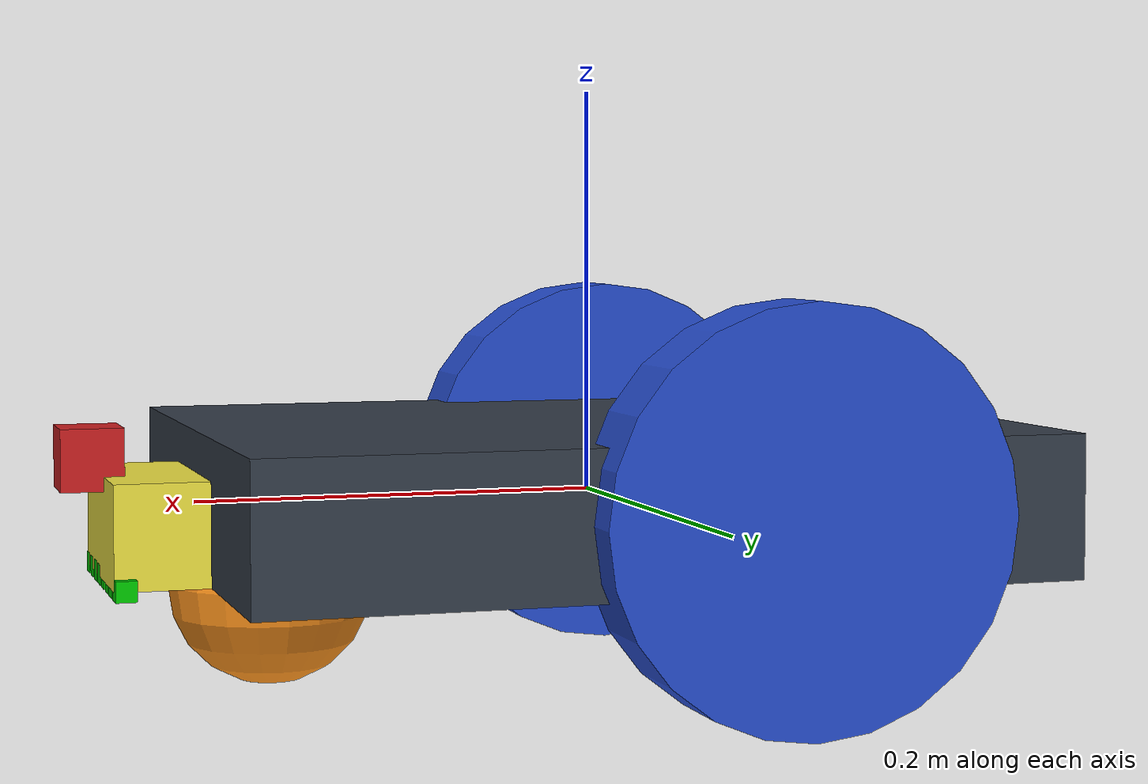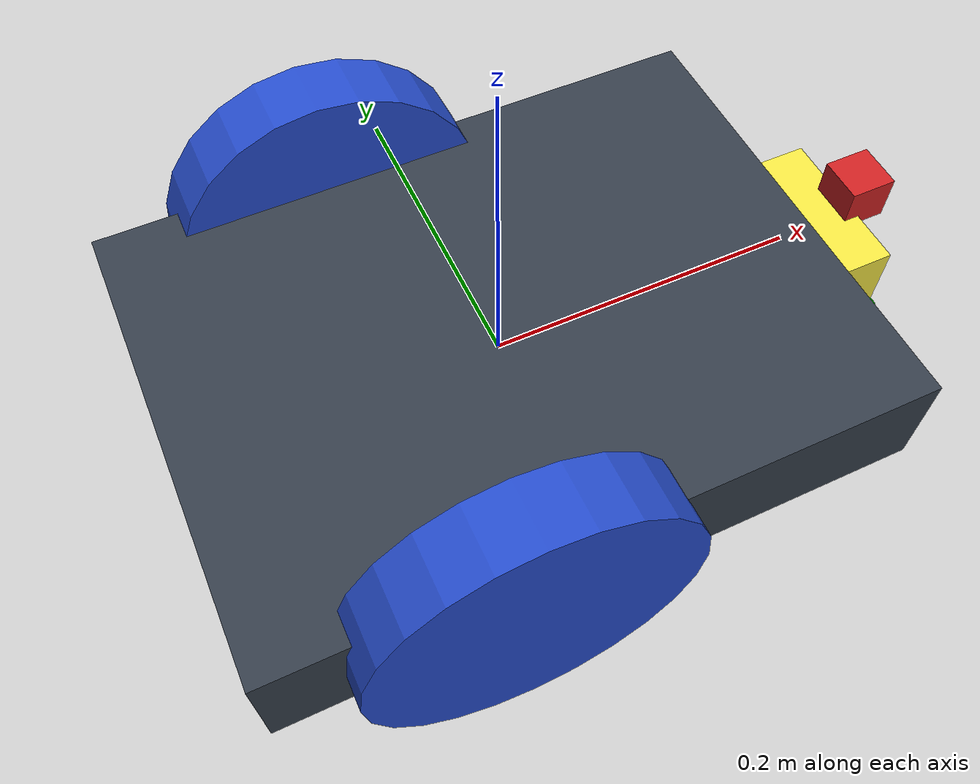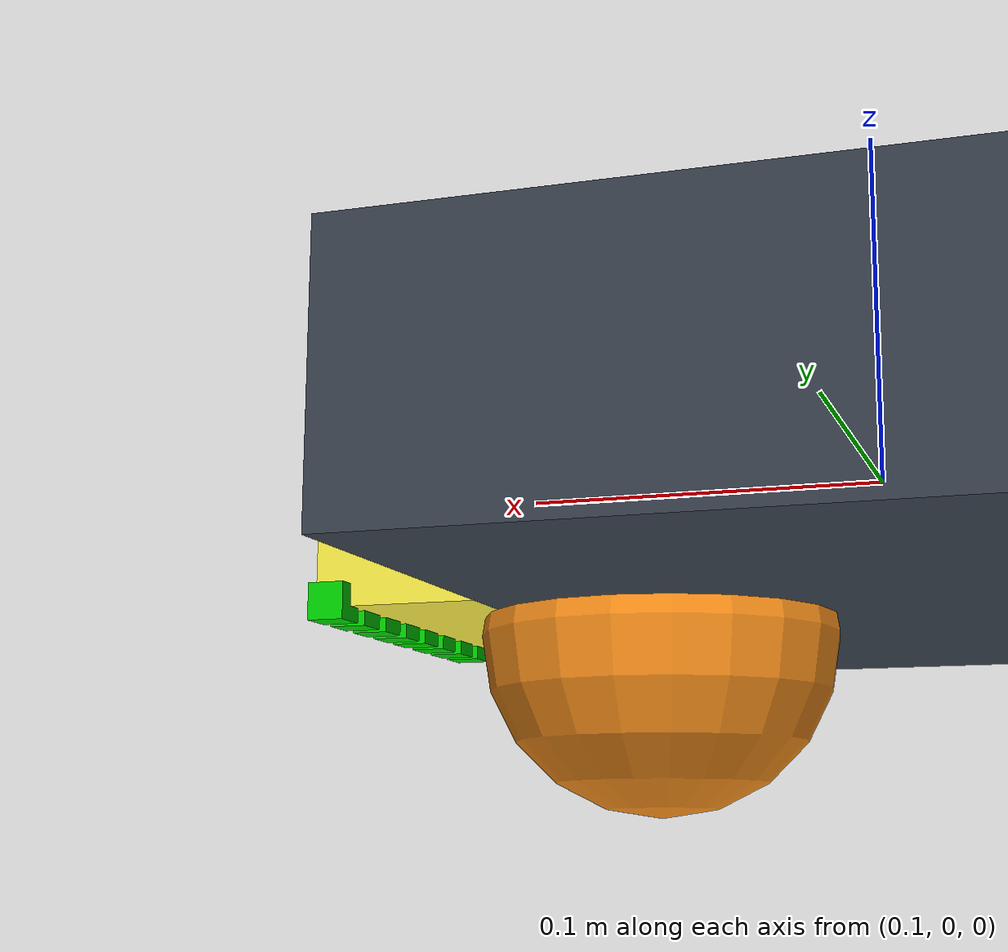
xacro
<?xml version="1.0" ?>
<robot name="robo" xmlns:xacro="https://www.ros.org/wiki/xacro" >

  <material name="black">
    <color rgba="0.0 0.0 0.0 1.0"/>
  </material>
  <material name="blue">
    <color rgba="0.203125 0.23828125 0.28515625 1.0"/>
  </material>
  <material name="green">
    <color rgba="0.0 0.8 0.0 1.0"/>
  </material>
  <material name="grey">
    <color rgba="0.2 0.2 0.2 1.0"/>
  </material>
  <material name="orange">
    <color rgba="1.0 0.423529411765 0.0392156862745 1.0"/>
  </material>
  <material name="brown">
    <color rgba="0.870588235294 0.811764705882 0.764705882353 1.0"/>
  </material>
  <material name="red">
    <color rgba="0.80078125 0.12890625 0.1328125 1.0"/>
  </material>
  <material name="white">
    <color rgba="1.0 1.0 1.0 1.0"/>
  </material>

  <gazebo reference="link_chassis">
    <material>Gazebo/Orange</material>
  </gazebo>
  <gazebo reference="link_left_wheel">
    <material>Gazebo/Blue</material>
  </gazebo>
  <gazebo reference="link_right_wheel">
    <material>Gazebo/Blue</material>
  </gazebo>

  <link name="link_chassis">
    <!-- pose and inertial -->
    <pose>0 0 0.1 0 0 0</pose>

    <inertial>
      <mass value="5"/>
      <origin rpy="0 0 0" xyz="0 0 0.1"/>
      <inertia ixx="0.0395416666667" ixy="0" ixz="0" iyy="0.106208333333" iyz="0" izz="0.106208333333"/>
    </inertial>

    <collision name="collision_chassis">
      <geometry>
        <box size="0.4 0.3 0.06"/>
      </geometry>
    </collision>

    <visual>
      <origin rpy="0 0 0" xyz="0 0 0"/>
      <geometry>
        <box size="0.4 0.3 0.07"/>
      </geometry>
      <material name="blue"/>
    </visual>

    <!-- caster front -->
    <collision name="caster_front_collision">
      <origin rpy=" 0 0 0" xyz="0.31 0 -0.05"/>
      <geometry>
        <sphere radius="0.05"/>
      </geometry>
      <surface>
        <friction>
          <ode>
            <mu>0</mu>
            <mu2>0</mu2>
            <slip1>1.0</slip1>
            <slip2>1.0</slip2>
          </ode>
        </friction>
      </surface>
    </collision>
    <visual name="caster_front_visual">
      <origin rpy=" 0 0 0" xyz="0.163 0 -0.04"/>
      <geometry>
        <sphere radius="0.05"/>
      </geometry>
    </visual>
    </link>

  <!-- Create wheel right -->

  <link name="link_right_wheel">
    <inertial>
      <mass value="0.2"/>
      <origin rpy="0 1.5707 1.5707" xyz="0 0 0"/>
      <inertia ixx="0.00052666666" ixy="0" ixz="0" iyy="0.00052666666" iyz="0" izz="0.001"/>
    </inertial>

    <collision name="link_right_wheel_collision">
      <origin rpy="0 1.5707 1.5707" xyz="0 0 0" />
      <geometry>
        <cylinder length="0.04" radius="0.1"/>
      </geometry>
    </collision>

    <visual name="link_right_wheel_visual">
      <origin rpy="0 1.5707 1.5707" xyz="0 0 0"/>
      <geometry>
        <cylinder length="0.04" radius="0.1"/>
      </geometry>
    </visual>

  </link>

  <!--   Joint for right wheel  -->
  <joint name="joint_right_wheel" type="continuous">
    <origin rpy="0 0 0" xyz="-0.054 0.15 0"/>
    <child link="link_right_wheel" />
    <parent link="link_chassis"/>
    <axis rpy="0 0 0" xyz="0 1 0"/>
    <limit effort="10000" velocity="1000"/>
    <joint_properties damping="1.0" friction="1.0" />
  </joint>

  <!-- Left Wheel link -->

  <link name="link_left_wheel">
    <inertial>
      <mass value="0.2"/>
      <origin rpy="0 1.5707 1.5707" xyz="0 0 0"/>
      <inertia ixx="0.00052666666" ixy="0" ixz="0" iyy="0.00052666666" iyz="0" izz="0.001"/>
    </inertial>

    <collision name="link_left_wheel_collision">
      <origin rpy="0 1.5707 1.5707" xyz="0 0 0" />
      <geometry>
        <cylinder length="0.04" radius="0.1"/>
      </geometry>
    </collision>

    <visual name="link_left_wheel_visual">
      <origin rpy="0 1.5707 1.5707" xyz="0 0 0"/>
      <geometry>
        <cylinder length="0.04" radius="0.1"/>
      </geometry>
    </visual>
  </link>

  <!--   Joint for left wheel  -->
  <joint name="joint_left_wheel" type="continuous">
    <origin rpy="0 0 0" xyz="-0.054 -0.15 0"/>
    <child link="link_left_wheel" />
    <parent link="link_chassis"/>
    <axis rpy="0 0 0" xyz="0 1 0"/>
    <limit effort="10000" velocity="1000"/>
    <joint_properties damping="1.0" friction="1.0" />
  </joint>

  <!-- Front sensor mount -->
  <link name="base_protrusion">
  <inertial>
      <mass value="0.2"/>
      <origin rpy="0 1.5707 1.5707" xyz="0 0 0"/>
      <inertia ixx="0.00052666666" ixy="0" ixz="0" iyy="0.00052666666" iyz="0" izz="0.001"/>
    </inertial>
  <visual>
    <geometry>
      <box size="0.1 0.05 0.05"/>
    </geometry>
  </visual>
  <collision>
    <geometry>
      <box size="0.1 0.05 0.05"/>
    </geometry>
  </collision>
</link>

<joint name="base_protrusion_joint" type="fixed">
  <axis xyz="0 0 0" />
    <origin rpy="0 0 1.5707" xyz="0.22 0 -0.01"/>
    <parent link="link_chassis"/>
    <child link="base_protrusion"/>
</joint>

  <!-- Camera -->
  <link name="camera_link">
    <inertial>
      <origin xyz="0 0 0" rpy="0 0 0"/>
      <mass value="0.5" />
      <!-- RANDOM INERTIA BELOW -->
      <inertia ixx="1e-6" ixy="0" ixz="0" iyy="1e-6" iyz="0" izz="1e-6" />
    </inertial>
    <visual>
      <origin xyz="0 0 0" rpy="0 0 0"/>
      <geometry>
          <box size="0.03 0.03 0.03"/>
      </geometry>
      <material name="red"/>
    </visual>
    <collision>
      <origin xyz="0 0 0" rpy="0 0 0"/>
      <geometry>
          <box size="0.1 0.1 0.1"/>
      </geometry>
    </collision>
  </link>

  <joint name="camera_joint" type="fixed">
    <axis xyz="0 0 0" />
    <origin xyz="0.25 0 0.023"/>
    <parent link="link_chassis"/>
    <child link="camera_link"/>
  </joint>

  <gazebo reference="camera_link">
    <sensor type="camera" name="camera1">
      <update_rate>30.0</update_rate>
      <camera name="head">
        <horizontal_fov>1.3962634</horizontal_fov>
        <image>
          <width>800</width>
          <height>800</height>
          <format>R8G8B8</format>
        </image>
        <clip>
          <near>0.02</near>
          <far>300</far>
        </clip>
        <noise>
          <type>gaussian</type>
          <!-- Noise is sampled independently per pixel on each frame.
               That pixel's noise value is added to each of its color
               channels, which at that point lie in the range [0,1]. -->
          <mean>0.0</mean>
          <stddev>0.007</stddev>
        </noise>
      </camera>
      <plugin name="camera_controller" filename="libgazebo_ros_camera.so">
        <alwaysOn>true</alwaysOn>
        <updateRate>0.0</updateRate>
        <cameraName>rrbot/camera1</cameraName>
        <imageTopicName>image_raw</imageTopicName>
        <cameraInfoTopicName>camera_info</cameraInfoTopicName>
        <frameName>camera_link</frameName>
        <hackBaseline>0.07</hackBaseline>
        <distortionK1>0.0</distortionK1>
        <distortionK2>0.0</distortionK2>
        <distortionK3>0.0</distortionK3>
        <distortionT1>0.0</distortionT1>
        <distortionT2>0.0</distortionT2>
      </plugin>
    </sensor>
  </gazebo>

  <gazebo>
    <plugin filename="libgazebo_ros_diff_drive.so" name="differential_drive_controller">
      <alwaysOn>true</alwaysOn>
      <updateRate>20</updateRate>
      <leftJoint>joint_right_wheel</leftJoint>
      <rightJoint>joint_left_wheel</rightJoint>
      <wheelSeparation>0.4</wheelSeparation>
      <wheelDiameter>0.1</wheelDiameter>
      <torque>0.1</torque>
      <commandTopic>cmd_vel</commandTopic>
      <odometryTopic>odom</odometryTopic>
      <odometryFrame>odom</odometryFrame>
      <robotBaseFrame>link_chassis</robotBaseFrame>
    </plugin>
  </gazebo>

  <joint name="ir_front_joint0" type="fixed">
    <axis xyz="0 1 0" />
    <origin rpy="0 1.5707 0" xyz="0.24 0.05 -0.034" />
    <parent link="link_chassis"/>
    <child link="base_ir_front0"/>
  </joint>
  <link name="base_ir_front0">
    <collision>
      <origin xyz="0 0 0" rpy="0 0 0"/>
      <geometry>
        <box size="0.01 0.01 0.01"/>
      </geometry>
    </collision>
       <visual>
      <origin xyz="0 0 0" rpy="0 0 0"/>
      <geometry>
        <box size="0.01 0.01 0.01"/>
      </geometry>
      <material name="green"/>
    </visual>
    <inertial>
      <mass value="1e-5" />
      <origin xyz="0 0 0" rpy="0 0 0"/>
      <inertia ixx="1e-6" ixy="0" ixz="0" iyy="1e-6" iyz="0"      izz="1e-6" />
    </inertial>
  </link>
  <gazebo reference="base_ir_front0">
   <sensor type="ray" name="TeraRanger">
      <pose>0 0 0 0 0 0</pose>
      <visualize>true</visualize>
      <update_rate>50</update_rate>
      <ray>
         <scan>
            <horizontal>
               <samples>10</samples>
               <resolution>1</resolution>
               <min_angle>-0.05</min_angle>
               <max_angle>0.05</max_angle>
            </horizontal>
            <vertical>
               <samples>10</samples>
               <resolution>1</resolution>
               <min_angle>-0.05</min_angle>
               <max_angle>0.05</max_angle>
            </vertical>
         </scan>
         <range>
            <min>0.01</min>
            <max>2</max>
            <resolution>0.02</resolution>
         </range>
      </ray>
      <plugin filename="libgazebo_ros_range.so" name="gazebo_ros_range">
         <gaussianNoise>0.005</gaussianNoise>
         <alwaysOn>true</alwaysOn>
         <updateRate>50</updateRate>
         <topicName>ir_sensor_0</topicName>
         <frameName>base_ir_front0</frameName>
         <radiation>INFRARED</radiation>
         <fov>0.2</fov>
      </plugin>
   </sensor>

   </gazebo>
     <joint name="ir_front_joint1" type="fixed">
    <axis xyz="0 1 0" />
    <origin rpy="0 1.5707 0" xyz="0.24 0.0357 -0.034" />
    <parent link="link_chassis"/>
    <child link="base_ir_front1"/>
  </joint>
  <link name="base_ir_front1">
    <collision>
      <origin xyz="0 0 0" rpy="0 0 0"/>
      <geometry>
        <box size="0.01 0.01 0.01"/>
      </geometry>
    </collision>
       <visual>
      <origin xyz="0 0 0" rpy="0 0 0"/>
      <geometry>
        <box size="0.01 0.01 0.01"/>
      </geometry>
      <material name="green"/>
    </visual>
    <inertial>
      <mass value="1e-5" />
      <origin xyz="0 0 0" rpy="0 0 0"/>
      <inertia ixx="1e-6" ixy="0" ixz="0" iyy="1e-6" iyz="0"      izz="1e-6" />
    </inertial>
  </link>
  <gazebo reference="base_ir_front1">
   <sensor type="ray" name="TeraRanger">
      <pose>0 0 0 0 0 0</pose>
      <visualize>true</visualize>
      <update_rate>50</update_rate>
      <ray>
         <scan>
            <horizontal>
               <samples>10</samples>
               <resolution>1</resolution>
               <min_angle>-0.05</min_angle>
               <max_angle>0.05</max_angle>
            </horizontal>
            <vertical>
               <samples>10</samples>
               <resolution>1</resolution>
               <min_angle>-0.05</min_angle>
               <max_angle>0.05</max_angle>
            </vertical>
         </scan>
         <range>
            <min>0.01</min>
            <max>2</max>
            <resolution>0.02</resolution>
         </range>
      </ray>
      <plugin filename="libgazebo_ros_range.so" name="gazebo_ros_range">
         <gaussianNoise>0.005</gaussianNoise>
         <alwaysOn>true</alwaysOn>
         <updateRate>50</updateRate>
         <topicName>ir_sensor_1</topicName>
         <frameName>base_ir_front1</frameName>
         <radiation>INFRARED</radiation>
         <fov>0.2</fov>
      </plugin>
   </sensor>
   </gazebo>

     <joint name="ir_front_joint2" type="fixed">
    <axis xyz="0 1 0" />
    <origin rpy="0 1.5707 0" xyz="0.24 0.0214 -0.034" />
    <parent link="link_chassis"/>
    <child link="base_ir_front2"/>
  </joint>
  <link name="base_ir_front2">
    <collision>
      <origin xyz="0 0 0" rpy="0 0 0"/>
      <geometry>
        <box size="0.01 0.01 0.01"/>
      </geometry>
    </collision>
       <visual>
      <origin xyz="0 0 0" rpy="0 0 0"/>
      <geometry>
        <box size="0.01 0.01 0.01"/>
      </geometry>
      <material name="green"/>
    </visual>
    <inertial>
      <mass value="1e-5" />
      <origin xyz="0 0 0" rpy="0 0 0"/>
      <inertia ixx="1e-6" ixy="0" ixz="0" iyy="1e-6" iyz="0"      izz="1e-6" />
    </inertial>
  </link>
  <gazebo reference="base_ir_front2">
   <sensor type="ray" name="TeraRanger">
      <pose>0 0 0 0 0 0</pose>
      <visualize>true</visualize>
      <update_rate>50</update_rate>
      <ray>
         <scan>
            <horizontal>
               <samples>10</samples>
               <resolution>1</resolution>
               <min_angle>-0.05</min_angle>
               <max_angle>0.05</max_angle>
            </horizontal>
            <vertical>
               <samples>10</samples>
               <resolution>1</resolution>
               <min_angle>-0.05</min_angle>
               <max_angle>0.05</max_angle>
            </vertical>
         </scan>
         <range>
            <min>0.01</min>
            <max>2</max>
            <resolution>0.02</resolution>
         </range>
      </ray>
      <plugin filename="libgazebo_ros_range.so" name="gazebo_ros_range">
         <gaussianNoise>0.005</gaussianNoise>
         <alwaysOn>true</alwaysOn>
         <updateRate>50</updateRate>
         <topicName>ir_sensor_2</topicName>
         <frameName>base_ir_front2</frameName>
         <radiation>INFRARED</radiation>
         <fov>0.2</fov>
      </plugin>
   </sensor>
   </gazebo>

  <joint name="ir_front_joint3" type="fixed">
    <axis xyz="0 1 0" />
    <origin rpy="0 1.5707 0" xyz="0.24 0.0071 -0.034" />
    <parent link="link_chassis"/>
    <child link="base_ir_front3"/>
  </joint>
  <link name="base_ir_front3">
    <collision>
      <origin xyz="0 0 0" rpy="0 0 0"/>
      <geometry>
        <box size="0.01 0.01 0.01"/>
      </geometry>
    </collision>
       <visual>
      <origin xyz="0 0 0" rpy="0 0 0"/>
      <geometry>
        <box size="0.01 0.01 0.01"/>
      </geometry>
      <material name="green"/>
    </visual>
    <inertial>
      <mass value="1e-5" />
      <origin xyz="0 0 0" rpy="0 0 0"/>
      <inertia ixx="1e-6" ixy="0" ixz="0" iyy="1e-6" iyz="0"      izz="1e-6" />
    </inertial>
  </link>
  <gazebo reference="base_ir_front3">
   <sensor type="ray" name="TeraRanger">
      <pose>0 0 0 0 0 0</pose>
      <visualize>true</visualize>
      <update_rate>50</update_rate>
      <ray>
         <scan>
            <horizontal>
               <samples>10</samples>
               <resolution>1</resolution>
               <min_angle>-0.05</min_angle>
               <max_angle>0.05</max_angle>
            </horizontal>
            <vertical>
               <samples>10</samples>
               <resolution>1</resolution>
               <min_angle>-0.05</min_angle>
               <max_angle>0.05</max_angle>
            </vertical>
         </scan>
         <range>
            <min>0.01</min>
            <max>2</max>
            <resolution>0.02</resolution>
         </range>
      </ray>
      <plugin filename="libgazebo_ros_range.so" name="gazebo_ros_range">
         <gaussianNoise>0.005</gaussianNoise>
         <alwaysOn>true</alwaysOn>
         <updateRate>50</updateRate>
         <topicName>ir_sensor_3</topicName>
         <frameName>base_ir_front3</frameName>
         <radiation>INFRARED</radiation>
         <fov>0.2</fov>
      </plugin>
   </sensor>
   </gazebo>

  <joint name="ir_front_joint4" type="fixed">
    <axis xyz="0 1 0" />
    <origin rpy="0 1.5707 0" xyz="0.24 -0.0071 -0.034" />
    <parent link="link_chassis"/>
    <child link="base_ir_front4"/>
  </joint>
  <link name="base_ir_front4">
    <collision>
      <origin xyz="0 0 0" rpy="0 0 0"/>
      <geometry>
        <box size="0.01 0.01 0.01"/>
      </geometry>
    </collision>
       <visual>
      <origin xyz="0 0 0" rpy="0 0 0"/>
      <geometry>
        <box size="0.01 0.01 0.01"/>
      </geometry>
      <material name="green"/>
    </visual>
    <inertial>
      <mass value="1e-5" />
      <origin xyz="0 0 0" rpy="0 0 0"/>
      <inertia ixx="1e-6" ixy="0" ixz="0" iyy="1e-6" iyz="0"      izz="1e-6" />
    </inertial>
  </link>
  <gazebo reference="base_ir_front4">
   <sensor type="ray" name="TeraRanger">
      <pose>0 0 0 0 0 0</pose>
      <visualize>true</visualize>
      <update_rate>50</update_rate>
      <ray>
         <scan>
            <horizontal>
               <samples>10</samples>
               <resolution>1</resolution>
               <min_angle>-0.05</min_angle>
               <max_angle>0.05</max_angle>
            </horizontal>
            <vertical>
               <samples>10</samples>
               <resolution>1</resolution>
               <min_angle>-0.05</min_angle>
               <max_angle>0.05</max_angle>
            </vertical>
         </scan>
         <range>
            <min>0.01</min>
            <max>2</max>
            <resolution>0.02</resolution>
         </range>
      </ray>
      <plugin filename="libgazebo_ros_range.so" name="gazebo_ros_range">
         <gaussianNoise>0.005</gaussianNoise>
         <alwaysOn>true</alwaysOn>
         <updateRate>50</updateRate>
         <topicName>ir_sensor_4</topicName>
         <frameName>base_ir_front4</frameName>
         <radiation>INFRARED</radiation>
         <fov>0.2</fov>
      </plugin>
   </sensor>
   </gazebo>

  <joint name="ir_front_joint5" type="fixed">
    <axis xyz="0 1 0" />
    <origin rpy="0 1.5707 0" xyz="0.24 -0.0214 -0.034" />
    <parent link="link_chassis"/>
    <child link="base_ir_front5"/>
  </joint>
  <link name="base_ir_front5">
    <collision>
      <origin xyz="0 0 0" rpy="0 0 0"/>
      <geometry>
        <box size="0.01 0.01 0.01"/>
      </geometry>
    </collision>
       <visual>
      <origin xyz="0 0 0" rpy="0 0 0"/>
      <geometry>
        <box size="0.01 0.01 0.01"/>
      </geometry>
      <material name="green"/>
    </visual>
    <inertial>
      <mass value="1e-5" />
      <origin xyz="0 0 0" rpy="0 0 0"/>
      <inertia ixx="1e-6" ixy="0" ixz="0" iyy="1e-6" iyz="0"      izz="1e-6" />
    </inertial>
  </link>
  <gazebo reference="base_ir_front5">
   <sensor type="ray" name="TeraRanger">
      <pose>0 0 0 0 0 0</pose>
      <visualize>true</visualize>
      <update_rate>50</update_rate>
      <ray>
         <scan>
            <horizontal>
               <samples>10</samples>
               <resolution>1</resolution>
               <min_angle>-0.05</min_angle>
               <max_angle>0.05</max_angle>
            </horizontal>
            <vertical>
               <samples>10</samples>
               <resolution>1</resolution>
               <min_angle>-0.05</min_angle>
               <max_angle>0.05</max_angle>
            </vertical>
         </scan>
         <range>
            <min>0.01</min>
            <max>2</max>
            <resolution>0.02</resolution>
         </range>
      </ray>
      <plugin filename="libgazebo_ros_range.so" name="gazebo_ros_range">
         <gaussianNoise>0.005</gaussianNoise>
         <alwaysOn>true</alwaysOn>
         <updateRate>50</updateRate>
         <topicName>ir_sensor_5</topicName>
         <frameName>base_ir_front5</frameName>
         <radiation>INFRARED</radiation>
         <fov>0.2</fov>
      </plugin>
   </sensor>
   </gazebo>

  <joint name="ir_front_joint6" type="fixed">
    <axis xyz="0 1 0" />
    <origin rpy="0 1.5707 0" xyz="0.24 -0.0357 -0.034" />
    <parent link="link_chassis"/>
    <child link="base_ir_front6"/>
  </joint>
  <link name="base_ir_front6">
    <collision>
      <origin xyz="0 0 0" rpy="0 0 0"/>
      <geometry>
        <box size="0.01 0.01 0.01"/>
      </geometry>
    </collision>
       <visual>
      <origin xyz="0 0 0" rpy="0 0 0"/>
      <geometry>
        <box size="0.01 0.01 0.01"/>
      </geometry>
      <material name="green"/>
    </visual>
    <inertial>
      <mass value="1e-5" />
      <origin xyz="0 0 0" rpy="0 0 0"/>
      <inertia ixx="1e-6" ixy="0" ixz="0" iyy="1e-6" iyz="0"      izz="1e-6" />
    </inertial>
  </link>
  <gazebo reference="base_ir_front6">
   <sensor type="ray" name="TeraRanger">
      <pose>0 0 0 0 0 0</pose>
      <visualize>true</visualize>
      <update_rate>50</update_rate>
      <ray>
         <scan>
            <horizontal>
               <samples>10</samples>
               <resolution>1</resolution>
               <min_angle>-0.05</min_angle>
               <max_angle>0.05</max_angle>
            </horizontal>
            <vertical>
               <samples>10</samples>
               <resolution>1</resolution>
               <min_angle>-0.05</min_angle>
               <max_angle>0.05</max_angle>
            </vertical>
         </scan>
         <range>
            <min>0.01</min>
            <max>2</max>
            <resolution>0.02</resolution>
         </range>
      </ray>
      <plugin filename="libgazebo_ros_range.so" name="gazebo_ros_range">
         <gaussianNoise>0.005</gaussianNoise>
         <alwaysOn>true</alwaysOn>
         <updateRate>50</updateRate>
         <topicName>ir_sensor_6</topicName>
         <frameName>base_ir_front6</frameName>
         <radiation>INFRARED</radiation>
         <fov>0.2</fov>
      </plugin>
   </sensor>
   </gazebo>

  <joint name="ir_front_joint7" type="fixed">
    <axis xyz="0 1 0" />
    <origin rpy="0 1.5707 0" xyz="0.24 -0.05 -0.034" />
    <parent link="link_chassis"/>
    <child link="base_ir_front7"/>
  </joint>
  <link name="base_ir_front7">
    <collision>
      <origin xyz="0 0 0" rpy="0 0 0"/>
      <geometry>
        <box size="0.01 0.01 0.01"/>
      </geometry>
    </collision>
       <visual>
      <origin xyz="0 0 0" rpy="0 0 0"/>
      <geometry>
        <box size="0.01 0.01 0.01"/>
      </geometry>
      <material name="green"/>
    </visual>
    <inertial>
      <mass value="1e-5" />
      <origin xyz="0 0 0" rpy="0 0 0"/>
      <inertia ixx="1e-6" ixy="0" ixz="0" iyy="1e-6" iyz="0"      izz="1e-6" />
    </inertial>
  </link>
  <gazebo reference="base_ir_front7">
   <sensor type="ray" name="TeraRanger">
      <pose>0 0 0 0 0 0</pose>
      <visualize>true</visualize>
      <update_rate>50</update_rate>
      <ray>
         <scan>
            <horizontal>
               <samples>10</samples>
               <resolution>1</resolution>
               <min_angle>-0.05</min_angle>
               <max_angle>0.05</max_angle>
            </horizontal>
            <vertical>
               <samples>10</samples>
               <resolution>1</resolution>
               <min_angle>-0.05</min_angle>
               <max_angle>0.05</max_angle>
            </vertical>
         </scan>
         <range>
            <min>0.01</min>
            <max>2</max>
            <resolution>0.02</resolution>
         </range>
      </ray>
      <plugin filename="libgazebo_ros_range.so" name="gazebo_ros_range">
         <gaussianNoise>0.005</gaussianNoise>
         <alwaysOn>true</alwaysOn>
         <updateRate>50</updateRate>
         <topicName>ir_sensor_7</topicName>
         <frameName>base_ir_front7</frameName>
         <radiation>INFRARED</radiation>
         <fov>0.2</fov>
      </plugin>
   </sensor>
   </gazebo>

</robot>
